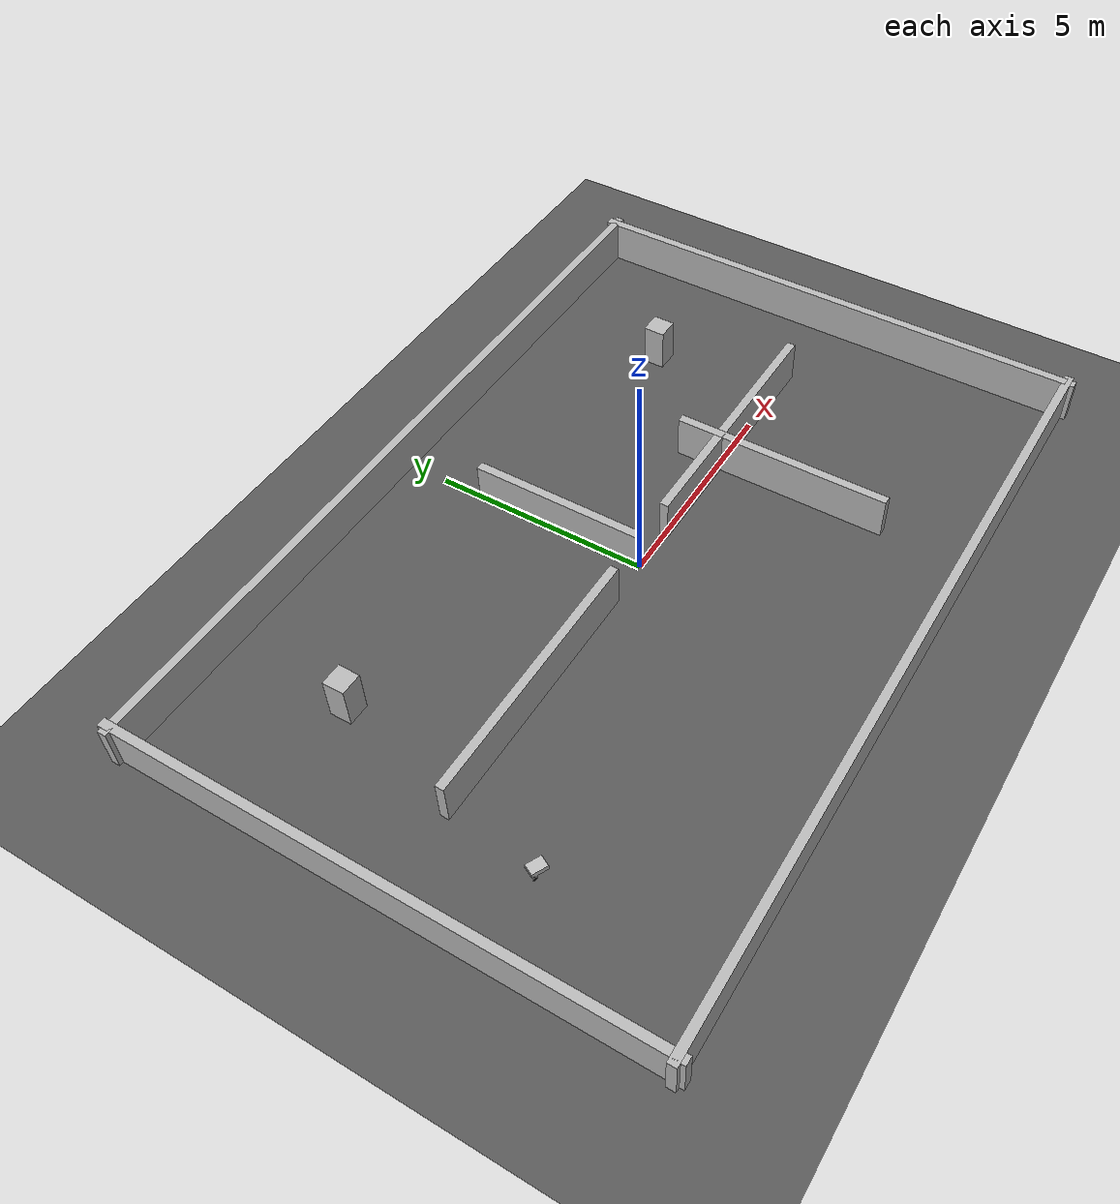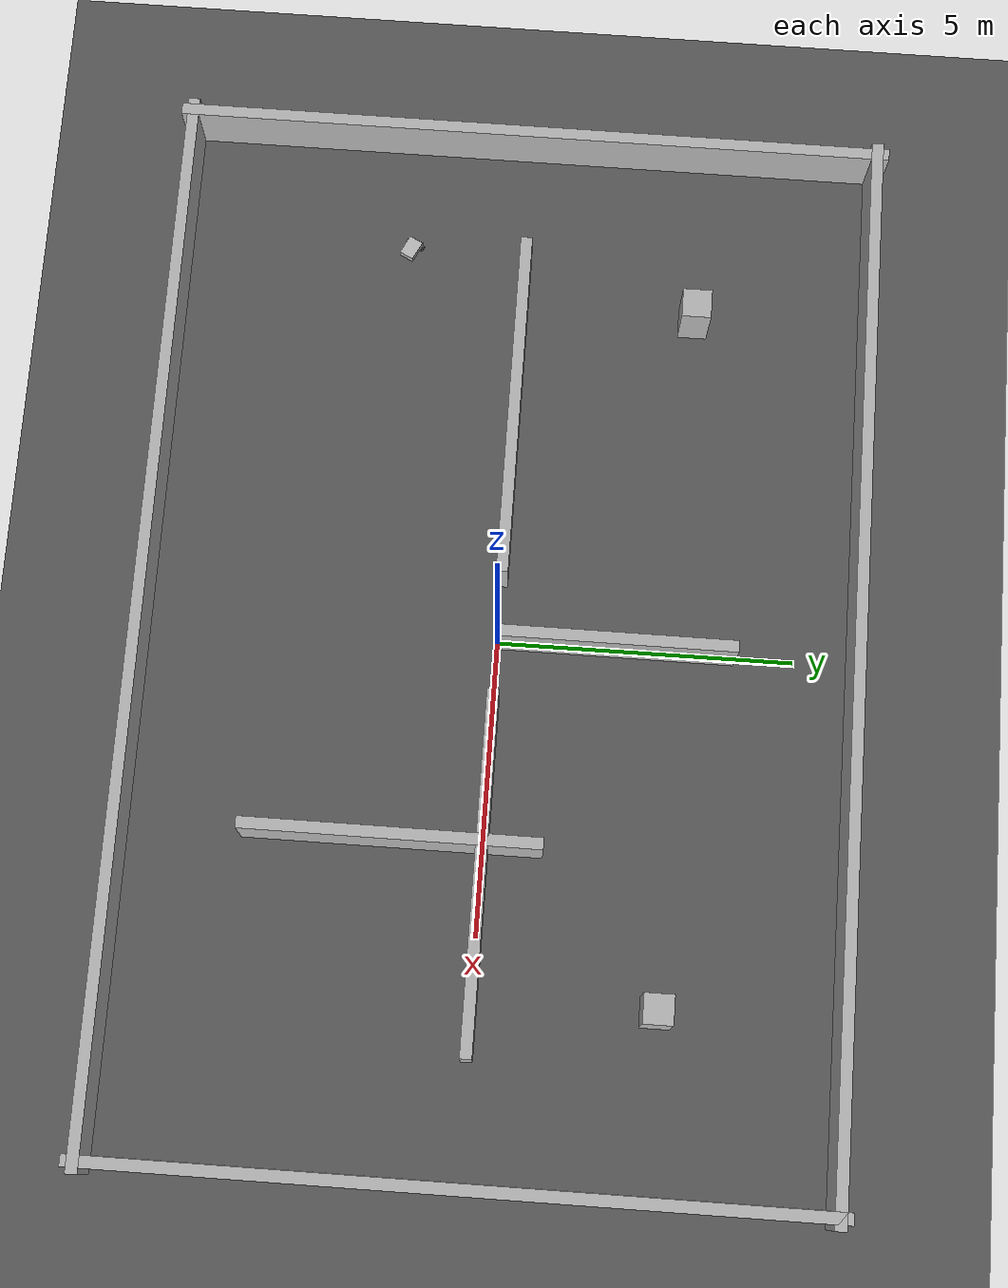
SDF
<sdf version='1.10'>
  <world name='example_walls_world'>

    <plugin filename="gz-sim-physics-system" name="gz::sim::systems::Physics"/>
    <plugin filename="gz-sim-user-commands-system" name="gz::sim::systems::UserCommands"/>
    <plugin filename="gz-sim-scene-broadcaster-system" name="gz::sim::systems::SceneBroadcaster"/>

    <plugin filename="gz-sim-sensors-system" name="gz::sim::systems::Sensors">
      <render_engine>ogre2</render_engine>
    </plugin>
    <gravity>0 0 -9.8000000000000007</gravity>
    <magnetic_field>5.5644999999999998e-06 2.2875799999999999e-05 -4.2388400000000002e-05</magnetic_field>
    <atmosphere type='adiabatic'/>
    <physics type='ode'>
      <max_step_size>0.001</max_step_size>
      <real_time_factor>1</real_time_factor>
      <real_time_update_rate>1000</real_time_update_rate>
    </physics>
    <scene>
      <ambient>0.400000006 0.400000006 0.400000006 1</ambient>
      <background>0.699999988 0.699999988 0.699999988 1</background>
      <shadows>true</shadows>
    </scene>
    <model name='ground'>
      <static>true</static>
      <link name='ground_link'>
        <collision name='collision'>
          <geometry>
            <plane>
              <normal>0 0 1</normal>
              <size>60 60</size>
            </plane>
          </geometry>
          <surface>
            <friction>
              <ode/>
            </friction>
            <bounce/>
            <contact/>
          </surface>
        </collision>
        <visual name='visual'>
          <geometry>
            <plane>
              <normal>0 0 1</normal>
              <size>60 60</size>
            </plane>
          </geometry>
          <material>
            <ambient>0.25 0.25 0.25 1</ambient>
            <diffuse>0.349999994 0.349999994 0.349999994 1</diffuse>
          </material>
        </visual>
        <pose>0 0 0 0 0 0</pose>
        <inertial>
          <pose>0 0 0 0 0 0</pose>
          <mass>1</mass>
          <inertia>
            <ixx>1</ixx>
            <ixy>0</ixy>
            <ixz>0</ixz>
            <iyy>1</iyy>
            <iyz>0</iyz>
            <izz>1</izz>
          </inertia>
        </inertial>
        <enable_wind>false</enable_wind>
      </link>
      <pose>0 0 0 0 0 0</pose>
      <self_collide>false</self_collide>
    </model>
    <model name='wall_left'>
      <static>true</static>
      <pose>-9 0 0.5 0 0 0</pose>
      <link name='link'>
        <collision name='c'>
          <geometry>
            <box>
              <size>0.20000000000000001 12.4 1</size>
            </box>
          </geometry>
          <surface>
            <friction>
              <ode/>
            </friction>
            <bounce/>
            <contact/>
          </surface>
        </collision>
        <visual name='v'>
          <geometry>
            <box>
              <size>0.20000000000000001 12.4 1</size>
            </box>
          </geometry>
        </visual>
        <pose>0 0 0 0 0 0</pose>
        <inertial>
          <pose>0 0 0 0 0 0</pose>
          <mass>1</mass>
          <inertia>
            <ixx>1</ixx>
            <ixy>0</ixy>
            <ixz>0</ixz>
            <iyy>1</iyy>
            <iyz>0</iyz>
            <izz>1</izz>
          </inertia>
        </inertial>
        <enable_wind>false</enable_wind>
      </link>
      <self_collide>false</self_collide>
    </model>
    <model name='wall_right'>
      <static>true</static>
      <pose>9 0 0.5 0 0 0</pose>
      <link name='link'>
        <collision name='c'>
          <geometry>
            <box>
              <size>0.20000000000000001 12.4 1</size>
            </box>
          </geometry>
          <surface>
            <friction>
              <ode/>
            </friction>
            <bounce/>
            <contact/>
          </surface>
        </collision>
        <visual name='v'>
          <geometry>
            <box>
              <size>0.20000000000000001 12.4 1</size>
            </box>
          </geometry>
        </visual>
        <pose>0 0 0 0 0 0</pose>
        <inertial>
          <pose>0 0 0 0 0 0</pose>
          <mass>1</mass>
          <inertia>
            <ixx>1</ixx>
            <ixy>0</ixy>
            <ixz>0</ixz>
            <iyy>1</iyy>
            <iyz>0</iyz>
            <izz>1</izz>
          </inertia>
        </inertial>
        <enable_wind>false</enable_wind>
      </link>
      <self_collide>false</self_collide>
    </model>
    <model name='wall_bottom'>
      <static>true</static>
      <pose>0 -6 0.5 0 0 0</pose>
      <link name='link'>
        <collision name='c'>
          <geometry>
            <box>
              <size>18.399999999999999 0.20000000000000001 1</size>
            </box>
          </geometry>
          <surface>
            <friction>
              <ode/>
            </friction>
            <bounce/>
            <contact/>
          </surface>
        </collision>
        <visual name='v'>
          <geometry>
            <box>
              <size>18.399999999999999 0.20000000000000001 1</size>
            </box>
          </geometry>
        </visual>
        <pose>0 0 0 0 0 0</pose>
        <inertial>
          <pose>0 0 0 0 0 0</pose>
          <mass>1</mass>
          <inertia>
            <ixx>1</ixx>
            <ixy>0</ixy>
            <ixz>0</ixz>
            <iyy>1</iyy>
            <iyz>0</iyz>
            <izz>1</izz>
          </inertia>
        </inertial>
        <enable_wind>false</enable_wind>
      </link>
      <self_collide>false</self_collide>
    </model>
    <model name='wall_top'>
      <static>true</static>
      <pose>0 6 0.5 0 0 0</pose>
      <link name='link'>
        <collision name='c'>
          <geometry>
            <box>
              <size>18.399999999999999 0.20000000000000001 1</size>
            </box>
          </geometry>
          <surface>
            <friction>
              <ode/>
            </friction>
            <bounce/>
            <contact/>
          </surface>
        </collision>
        <visual name='v'>
          <geometry>
            <box>
              <size>18.399999999999999 0.20000000000000001 1</size>
            </box>
          </geometry>
        </visual>
        <pose>0 0 0 0 0 0</pose>
        <inertial>
          <pose>0 0 0 0 0 0</pose>
          <mass>1</mass>
          <inertia>
            <ixx>1</ixx>
            <ixy>0</ixy>
            <ixz>0</ixz>
            <iyy>1</iyy>
            <iyz>0</iyz>
            <izz>1</izz>
          </inertia>
        </inertial>
        <enable_wind>false</enable_wind>
      </link>
      <self_collide>false</self_collide>
    </model>
    <model name='wall_mid_left'>
      <static>true</static>
      <pose>-4 0 0.5 0 0 0</pose>
      <link name='link'>
        <collision name='c'>
          <geometry>
            <box>
              <size>6 0.20000000000000001 1</size>
            </box>
          </geometry>
          <surface>
            <friction>
              <ode/>
            </friction>
            <bounce/>
            <contact/>
          </surface>
        </collision>
        <visual name='v'>
          <geometry>
            <box>
              <size>6 0.20000000000000001 1</size>
            </box>
          </geometry>
        </visual>
        <pose>0 0 0 0 0 0</pose>
        <inertial>
          <pose>0 0 0 0 0 0</pose>
          <mass>1</mass>
          <inertia>
            <ixx>1</ixx>
            <ixy>0</ixy>
            <ixz>0</ixz>
            <iyy>1</iyy>
            <iyz>0</iyz>
            <izz>1</izz>
          </inertia>
        </inertial>
        <enable_wind>false</enable_wind>
      </link>
      <self_collide>false</self_collide>
    </model>
    <model name='wall_mid_right'>
      <static>true</static>
      <pose>4 0 0.5 0 0 0</pose>
      <link name='link'>
        <collision name='c'>
          <geometry>
            <box>
              <size>6 0.20000000000000001 1</size>
            </box>
          </geometry>
          <surface>
            <friction>
              <ode/>
            </friction>
            <bounce/>
            <contact/>
          </surface>
        </collision>
        <visual name='v'>
          <geometry>
            <box>
              <size>6 0.20000000000000001 1</size>
            </box>
          </geometry>
        </visual>
        <pose>0 0 0 0 0 0</pose>
        <inertial>
          <pose>0 0 0 0 0 0</pose>
          <mass>1</mass>
          <inertia>
            <ixx>1</ixx>
            <ixy>0</ixy>
            <ixz>0</ixz>
            <iyy>1</iyy>
            <iyz>0</iyz>
            <izz>1</izz>
          </inertia>
        </inertial>
        <enable_wind>false</enable_wind>
      </link>
      <self_collide>false</self_collide>
    </model>
    <model name='wall_mid_vertical'>
      <static>true</static>
      <pose>0 2 0.5 0 0 0</pose>
      <link name='link'>
        <collision name='c'>
          <geometry>
            <box>
              <size>0.20000000000000001 4 1</size>
            </box>
          </geometry>
          <surface>
            <friction>
              <ode/>
            </friction>
            <bounce/>
            <contact/>
          </surface>
        </collision>
        <visual name='v'>
          <geometry>
            <box>
              <size>0.20000000000000001 4 1</size>
            </box>
          </geometry>
        </visual>
        <pose>0 0 0 0 0 0</pose>
        <inertial>
          <pose>0 0 0 0 0 0</pose>
          <mass>1</mass>
          <inertia>
            <ixx>1</ixx>
            <ixy>0</ixy>
            <ixz>0</ixz>
            <iyy>1</iyy>
            <iyz>0</iyz>
            <izz>1</izz>
          </inertia>
        </inertial>
        <enable_wind>false</enable_wind>
      </link>
      <self_collide>false</self_collide>
    </model>
    <model name='wall_right_vertical'>
      <static>true</static>
      <pose>3.5 -1.5 0.5 0 0 0</pose>
      <link name='link'>
        <collision name='c'>
          <geometry>
            <box>
              <size>0.20000000000000001 5 1</size>
            </box>
          </geometry>
          <surface>
            <friction>
              <ode/>
            </friction>
            <bounce/>
            <contact/>
          </surface>
        </collision>
        <visual name='v'>
          <geometry>
            <box>
              <size>0.20000000000000001 5 1</size>
            </box>
          </geometry>
        </visual>
        <pose>0 0 0 0 0 0</pose>
        <inertial>
          <pose>0 0 0 0 0 0</pose>
          <mass>1</mass>
          <inertia>
            <ixx>1</ixx>
            <ixy>0</ixy>
            <ixz>0</ixz>
            <iyy>1</iyy>
            <iyz>0</iyz>
            <izz>1</izz>
          </inertia>
        </inertial>
        <enable_wind>false</enable_wind>
      </link>
      <self_collide>false</self_collide>
    </model>
    <model name='pillar_1'>
      <static>true</static>
      <pose>-6 3 0.5 0 0 0</pose>
      <link name='link'>
        <collision name='c'>
          <geometry>
            <box>
              <size>0.5 0.5 1</size>
            </box>
          </geometry>
          <surface>
            <friction>
              <ode/>
            </friction>
            <bounce/>
            <contact/>
          </surface>
        </collision>
        <visual name='v'>
          <geometry>
            <box>
              <size>0.5 0.5 1</size>
            </box>
          </geometry>
        </visual>
        <pose>0 0 0 0 0 0</pose>
        <inertial>
          <pose>0 0 0 0 0 0</pose>
          <mass>1</mass>
          <inertia>
            <ixx>1</ixx>
            <ixy>0</ixy>
            <ixz>0</ixz>
            <iyy>1</iyy>
            <iyz>0</iyz>
            <izz>1</izz>
          </inertia>
        </inertial>
        <enable_wind>false</enable_wind>
      </link>
      <self_collide>false</self_collide>
    </model>
    <model name='pillar_2'>
      <static>true</static>
      <pose>6 3 0.5 0 0 0</pose>
      <link name='link'>
        <collision name='c'>
          <geometry>
            <box>
              <size>0.5 0.5 1</size>
            </box>
          </geometry>
          <surface>
            <friction>
              <ode/>
            </friction>
            <bounce/>
            <contact/>
          </surface>
        </collision>
        <visual name='v'>
          <geometry>
            <box>
              <size>0.5 0.5 1</size>
            </box>
          </geometry>
        </visual>
        <pose>0 0 0 0 0 0</pose>
        <inertial>
          <pose>0 0 0 0 0 0</pose>
          <mass>1</mass>
          <inertia>
            <ixx>1</ixx>
            <ixy>0</ixy>
            <ixz>0</ixz>
            <iyy>1</iyy>
            <iyz>0</iyz>
            <izz>1</izz>
          </inertia>
        </inertial>
        <enable_wind>false</enable_wind>
      </link>
      <self_collide>false</self_collide>
    </model>
    <model name='my_robot'>
      <pose>-7.0286698341365845 -2.0339469909666601 -8.5700697813329008e-07 -3.7822331688886207e-09 2.5770460548221921e-07 -0.46426012157369129</pose>
      <link name='base_link'>
        <pose>0 0 0.11 0 0 0</pose>
        <inertial>
          <mass>8</mass>
          <inertia>
            <ixx>0.10000000000000001</ixx>
            <iyy>0.10000000000000001</iyy>
            <izz>0.10000000000000001</izz>
            <ixy>0</ixy>
            <ixz>0</ixz>
            <iyz>0</iyz>
          </inertia>
          <pose>0 0 0 0 0 0</pose>
        </inertial>
        <visual name='base_visual'>
          <geometry>
            <box>
              <size>0.34999999999999998 0.25 0.12</size>
            </box>
          </geometry>
          <material>
            <ambient>0.300000012 0.300000012 0.300000012 1</ambient>
            <diffuse>0.75 0.75 0.75 1</diffuse>
          </material>
        </visual>
        <collision name='base_collision'>
          <pose>0 0 0.050000000000000003 0 0 0</pose>
          <geometry>
            <box>
              <size>0.34999999999999998 0.25 0.10000000000000001</size>
            </box>
          </geometry>
          <surface>
            <bounce>
              <restitution_coefficient>0</restitution_coefficient>
            </bounce>
            <friction>
              <ode/>
            </friction>
            <contact/>
          </surface>
        </collision>
        <enable_wind>false</enable_wind>
      </link>
      <link name='left_wheel_link'>
        <pose>-0.12500000000000178 0.14999999999999947 0.049999999999999933 1.3234889800848443e-23 -1.9671822526693115e-10 -1.3017720166131568e-33</pose>
        <inertial>
          <mass>1</mass>
          <inertia>
            <ixx>0.0050000000000000001</ixx>
            <iyy>0.0050000000000000001</iyy>
            <izz>0.0050000000000000001</izz>
            <ixy>0</ixy>
            <ixz>0</ixz>
            <iyz>0</iyz>
          </inertia>
          <pose>0 0 0 0 0 0</pose>
        </inertial>
        <collision name='left_wheel_collision'>
          <pose>0 0 0 1.5708 0 0</pose>
          <geometry>
            <cylinder>
              <radius>0.050000000000000003</radius>
              <length>0.029999999999999999</length>
            </cylinder>
          </geometry>
          <surface>
            <friction>
              <ode>
                <mu>1.2</mu>
                <mu2>1.2</mu2>
              </ode>
            </friction>
            <bounce>
              <restitution_coefficient>0</restitution_coefficient>
            </bounce>
            <contact/>
          </surface>
        </collision>
        <visual name='left_wheel_visual'>
          <pose>0 0 0 1.5708 0 0</pose>
          <geometry>
            <cylinder>
              <radius>0.050000000000000003</radius>
              <length>0.029999999999999999</length>
            </cylinder>
          </geometry>
          <material>
            <ambient>0.0199999996 0.0199999996 0.0199999996 1</ambient>
            <diffuse>0.0500000007 0.0500000007 0.0500000007 1</diffuse>
          </material>
        </visual>
        <enable_wind>false</enable_wind>
      </link>
      <link name='right_wheel_link'>
        <pose>-0.12499999999999911 -0.15000000000000036 0.04999999999999994 0 -7.2673772093292169e-11 0</pose>
        <inertial>
          <mass>1</mass>
          <inertia>
            <ixx>0.0050000000000000001</ixx>
            <iyy>0.0050000000000000001</iyy>
            <izz>0.0050000000000000001</izz>
            <ixy>0</ixy>
            <ixz>0</ixz>
            <iyz>0</iyz>
          </inertia>
          <pose>0 0 0 0 0 0</pose>
        </inertial>
        <collision name='right_wheel_collision'>
          <pose>0 0 0 1.5708 0 0</pose>
          <geometry>
            <cylinder>
              <radius>0.050000000000000003</radius>
              <length>0.029999999999999999</length>
            </cylinder>
          </geometry>
          <surface>
            <friction>
              <ode>
                <mu>1.2</mu>
                <mu2>1.2</mu2>
              </ode>
            </friction>
            <bounce>
              <restitution_coefficient>0</restitution_coefficient>
            </bounce>
            <contact/>
          </surface>
        </collision>
        <visual name='right_wheel_visual'>
          <pose>0 0 0 1.5708 0 0</pose>
          <geometry>
            <cylinder>
              <radius>0.050000000000000003</radius>
              <length>0.029999999999999999</length>
            </cylinder>
          </geometry>
          <material>
            <ambient>0.0199999996 0.0199999996 0.0199999996 1</ambient>
            <diffuse>0.0500000007 0.0500000007 0.0500000007 1</diffuse>
          </material>
        </visual>
        <enable_wind>false</enable_wind>
      </link>
      <link name='caster_link'>
        <pose>0.099999999999999645 0 0.04999999999999992 6.6174449004242214e-24 -1.3234889800848443e-23 -4.3790577010150533e-47</pose>
        <inertial>
          <mass>0.29999999999999999</mass>
          <inertia>
            <ixx>0.001</ixx>
            <iyy>0.001</iyy>
            <izz>0.001</izz>
            <ixy>0</ixy>
            <ixz>0</ixz>
            <iyz>0</iyz>
          </inertia>
          <pose>0 0 0 0 0 0</pose>
        </inertial>
        <collision name='caster_collision'>
          <geometry>
            <sphere>
              <radius>0.050000000000000003</radius>
            </sphere>
          </geometry>
          <surface>
            <friction>
              <ode>
                <mu>0.20000000000000001</mu>
                <mu2>0.20000000000000001</mu2>
              </ode>
            </friction>
            <bounce>
              <restitution_coefficient>0</restitution_coefficient>
            </bounce>
            <contact/>
          </surface>
        </collision>
        <visual name='caster_visual'>
          <geometry>
            <sphere>
              <radius>0.050000000000000003</radius>
            </sphere>
          </geometry>
          <material>
            <ambient>0.0199999996 0.0199999996 0.0199999996 1</ambient>
            <diffuse>0.0500000007 0.0500000007 0.0500000007 1</diffuse>
          </material>
        </visual>
        <enable_wind>false</enable_wind>
      </link>
      <joint name='left_wheel_joint' type='revolute'>
        <parent>base_link</parent>
        <child>left_wheel_link</child>
        <axis>
          <xyz>0 1 0</xyz>
          <limit>
            <lower>-10000000000000000</lower>
            <upper>10000000000000000</upper>
            <effort>inf</effort>
            <velocity>inf</velocity>
            <stiffness>100000000</stiffness>
            <dissipation>1</dissipation>
          </limit>
          <dynamics>
            <spring_reference>0</spring_reference>
            <spring_stiffness>0</spring_stiffness>
            <damping>0</damping>
            <friction>0</friction>
          </dynamics>
        </axis>
        <pose>0 0 0 0 0 0</pose>
      </joint>
      <joint name='right_wheel_joint' type='revolute'>
        <parent>base_link</parent>
        <child>right_wheel_link</child>
        <axis>
          <xyz>0 1 0</xyz>
          <limit>
            <lower>-10000000000000000</lower>
            <upper>10000000000000000</upper>
            <effort>inf</effort>
            <velocity>inf</velocity>
            <stiffness>100000000</stiffness>
            <dissipation>1</dissipation>
          </limit>
          <dynamics>
            <spring_reference>0</spring_reference>
            <spring_stiffness>0</spring_stiffness>
            <damping>0</damping>
            <friction>0</friction>
          </dynamics>
        </axis>
        <pose>0 0 0 0 0 0</pose>
      </joint>
      <joint name='caster_joint' type='fixed'>
        <parent>base_link</parent>
        <child>caster_link</child>
        <pose>0 0 0 0 0 0</pose>
      </joint>
      <link name='laser_link'>
        <pose>0.12000000000000099 0 0.21999999999999986 6.6174449004242214e-24 -1.3234889800848443e-23 -4.3790577010150533e-47</pose>
        <sensor name='lidar' type='gpu_lidar'>
          <pose>0 0 0 0 0 0</pose>
          <topic>scan</topic>
          <update_rate>10</update_rate>
          <enable_metrics>false</enable_metrics>
          <lidar>
            <scan>
              <horizontal>
                <samples>720</samples>
                <resolution>1</resolution>
                <min_angle>-3.1415899999999999</min_angle>
                <max_angle>3.1415899999999999</max_angle>
              </horizontal>
              <vertical>
                <samples>1</samples>
                <min_angle>0</min_angle>
                <max_angle>0</max_angle>
                <resolution>1</resolution>
              </vertical>
            </scan>
            <range>
              <min>0.12</min>
              <max>8</max>
              <resolution>0.01</resolution>
            </range>
            <noise>
              <type>none</type>
              <mean>0</mean>
              <stddev>0</stddev>
            </noise>
            <visibility_mask>4294967295</visibility_mask>
          </lidar>
        </sensor>
        <inertial>
          <pose>0 0 0 0 0 0</pose>
          <mass>1</mass>
          <inertia>
            <ixx>1</ixx>
            <ixy>0</ixy>
            <ixz>0</ixz>
            <iyy>1</iyy>
            <iyz>0</iyz>
            <izz>1</izz>
          </inertia>
        </inertial>
        <enable_wind>false</enable_wind>
      </link>
      <joint name='laser_joint' type='fixed'>
        <parent>base_link</parent>
        <child>laser_link</child>
        <pose>0 0 0 0 0 0</pose>
      </joint>
      <plugin name='gz::sim::systems::DiffDrive' filename='gz-sim-diff-drive-system'>
        <left_joint>left_wheel_joint</left_joint>
        <right_joint>right_wheel_joint</right_joint>
        <wheel_separation>0.30</wheel_separation>
        <wheel_radius>0.05</wheel_radius>
        <topic>cmd_vel</topic>
        <odom_topic>odom</odom_topic>
        <frame_id>odom</frame_id>
        <child_frame_id>base_footprint</child_frame_id>
        <tf_topic>tf</tf_topic>
        <odom_publisher_frequency>30</odom_publisher_frequency>
      </plugin>
      <static>false</static>
      <self_collide>false</self_collide>
    </model>
    <light name='sun' type='directional'>
      <pose>0 0 10 0 0 0</pose>
      <cast_shadows>true</cast_shadows>
      <intensity>1</intensity>
      <direction>-0.20000000000000001 0.20000000000000001 -1</direction>
      <diffuse>1 1 1 1</diffuse>
      <specular>0.100000001 0.100000001 0.100000001 1</specular>
      <attenuation>
        <range>10</range>
        <linear>1</linear>
        <constant>1</constant>
        <quadratic>0</quadratic>
      </attenuation>
      <spot>
        <inner_angle>0</inner_angle>
        <outer_angle>0</outer_angle>
        <falloff>0</falloff>
      </spot>
    </light>
  </world>
</sdf>
